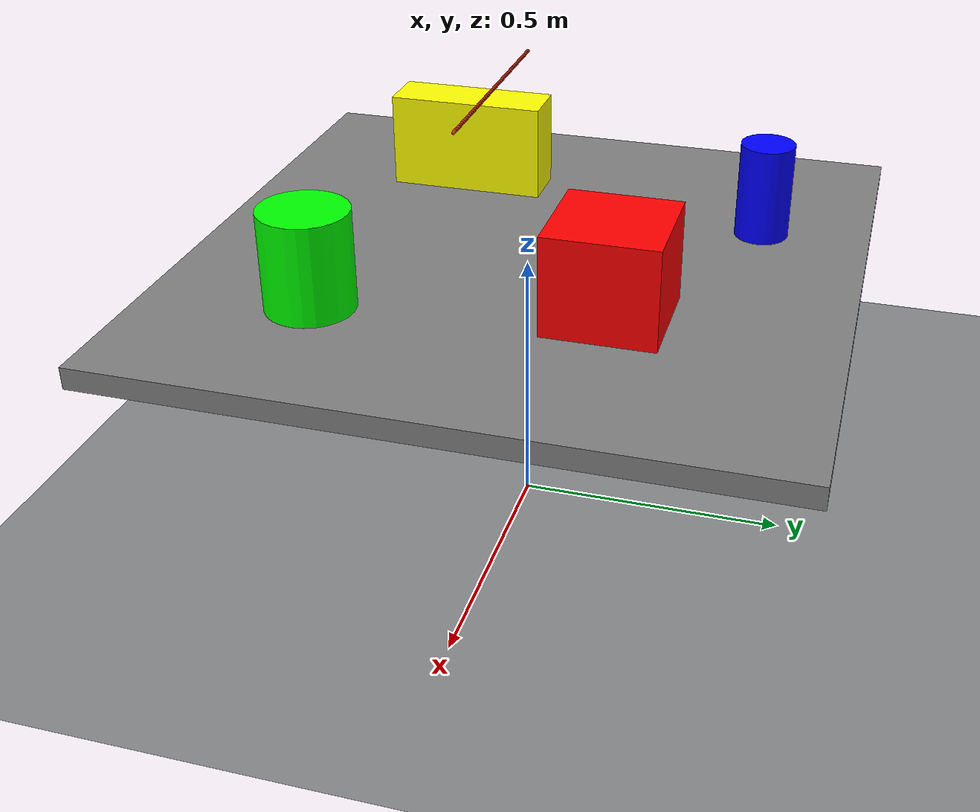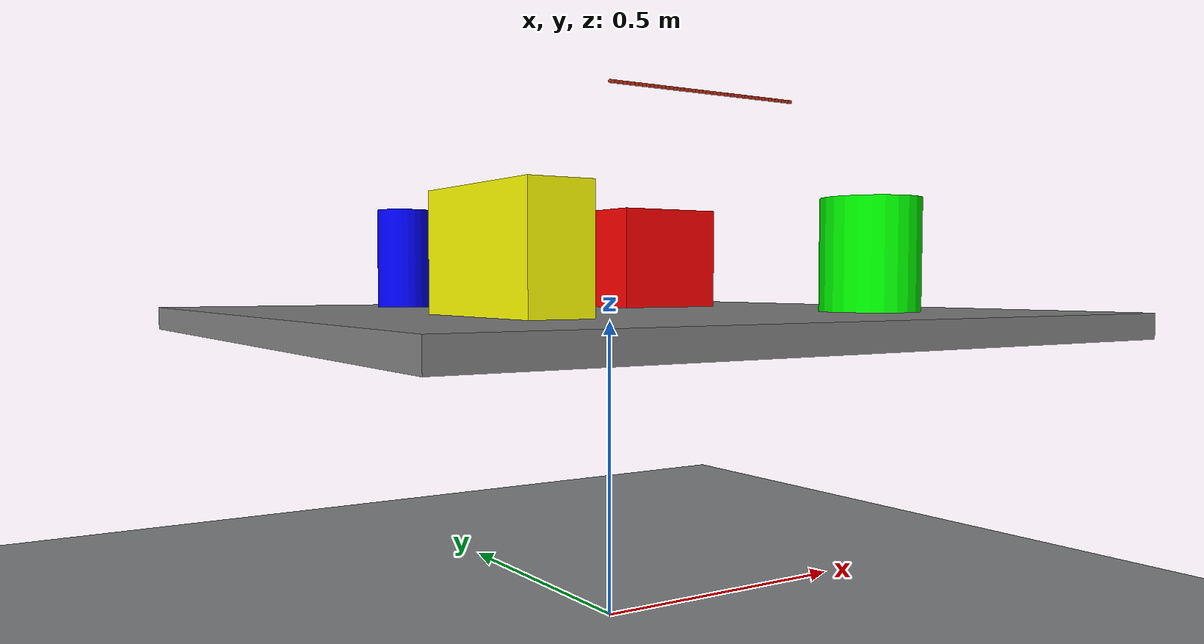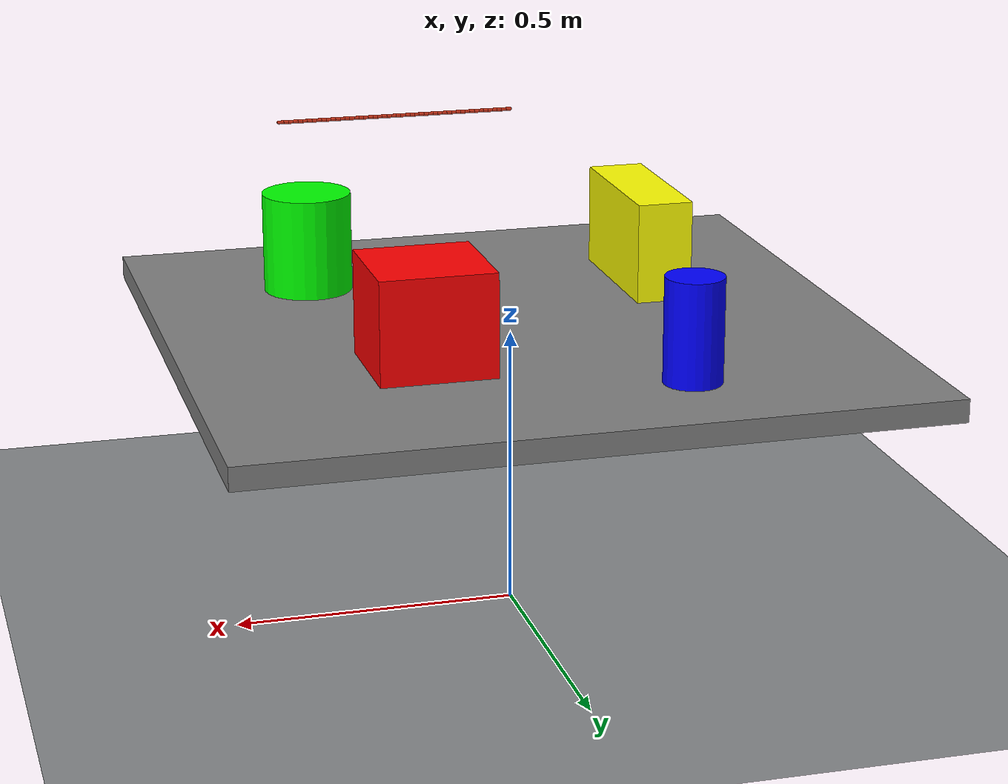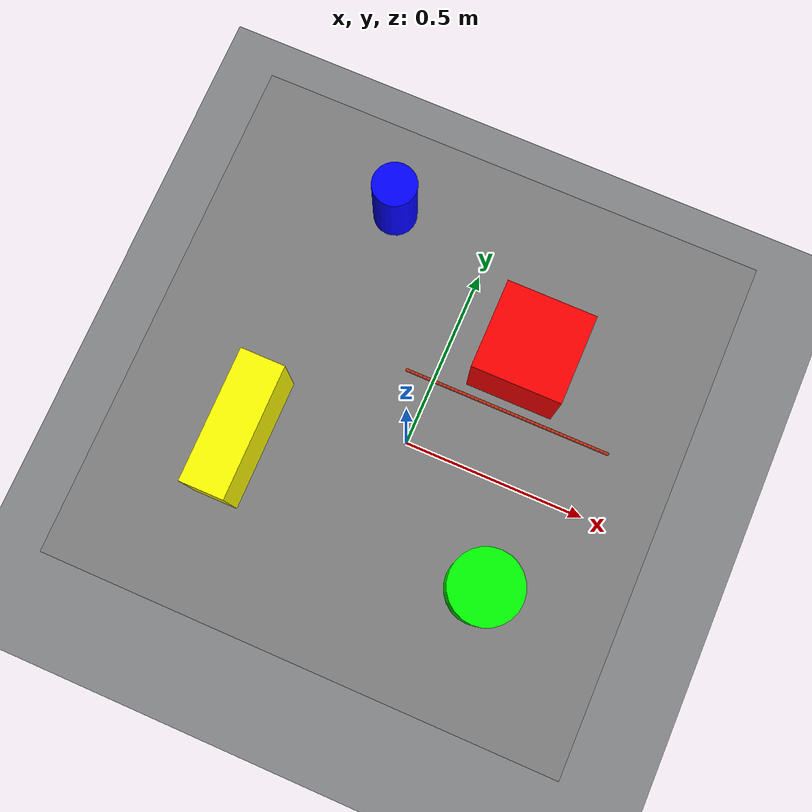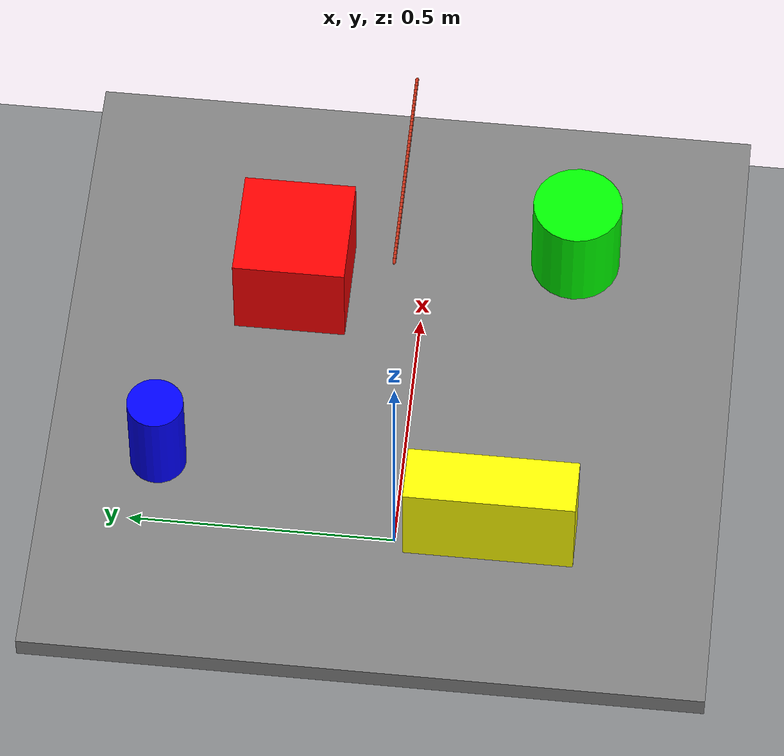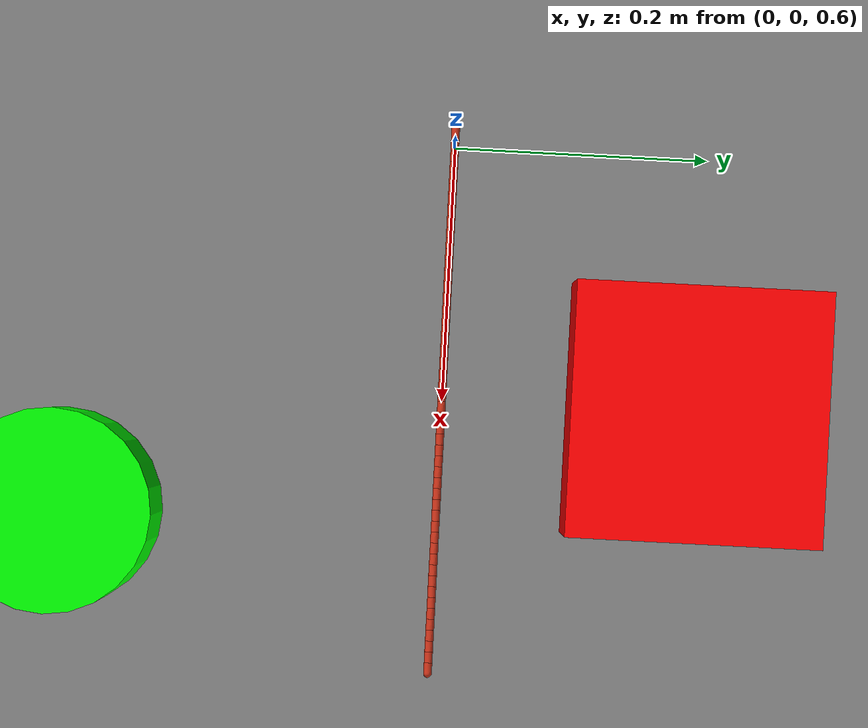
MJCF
<mujoco model="aloha_scene">
  <compiler meshdir="mesh" texturedir="texture"/>
  <include file="2d_case1.xml"/>
  <include file="cable.xml"/>
  <statistic center="0 -0.1 0.2" extent="0.6" meansize="0.05"/>

  <visual>
    <headlight diffuse="0.6 0.6 0.6" ambient="0.3 0.3 0.3" specular="0 0 0"/>
    <rgba haze="0.15 0.25 0.35 1"/>
    <global azimuth="90" elevation="-20"/>
    <quality shadowsize="8192"/>
  </visual>

  <asset>
    <material name="metal" rgba="0.517 0.529 0.537 1"/>
    <material name="wood" rgba="0.8 0.52 0.25 1"/>
    <material name="red" rgba="1 0 0 1"/>
    <material name="blue" rgba="0 0 1 1"/>
    <material name="green" rgba="0 1 0 1"/>
    <material name="yellow" rgba="1 1 0 1"/>
    <material name="white" rgba="1 1 1 1"/>
    <material name="gray" rgba="0.5 0.5 0.5 1"/>
  </asset>

  <default>
    <default class="frame">
      <geom group="1" type="mesh" material="black"/>
    </default>
  </default>

  <worldbody>
    <light pos="0 0.1 2.5"/>
    <geom name="floor" size="2 2 0.05" type="plane" material="metal" pos="0 0 0.05"/>
    <geom name="table" pos="0 0 0.5" size="0.6 0.6 0.02" type="box"/>
    <camera name="overhead_cam" focal="1.93e-3 1.93e-3" resolution="1280 720" sensorsize="3896e-6 2140e-6"
            pos="0 -0.303794 1.02524" mode="fixed" quat="0.976332 0.216277 0 0"/>
    <camera name="worms_eye_cam" focal="1.93e-3 1.93e-3" resolution="1280 720" sensorsize="3896e-6 2140e-6"
            pos="0 -0.377167 0.0316055" mode="fixed" quat="0.672659 0.739953 0 0"/>
  </worldbody>
</mujoco>

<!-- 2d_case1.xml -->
<mujoco model="tabletop_simulation">
    <worldbody>
        <!-- Obstacles -->
        <body name="obstacle1" pos="0.2 0.2 0.6">
            <geom type="box" size="0.1 0.1 0.1" material="red"/>
        </body>

        <body name="obstacle2" pos="-0.2 0.4 0.6">
            <geom type="cylinder" size="0.05 0.1" material="blue"/>
        </body>

        <body name="obstacle3" pos="0.3 -0.3 0.6">
            <geom type="cylinder" size="0.08 0.1" material="green"/>
        </body>

        <body name="obstacle4" pos="-0.3 -0.2 0.6">
            <geom type="box" size="0.05 0.15 0.1" material="yellow"/>
        </body>

    </worldbody>
</mujoco>

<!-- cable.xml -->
<mujoco model="Cable">
  <compiler angle="radian" autolimits="true"/>
  <size memory="8M"/>
  <statistic meansize="0.0147059" extent="0.407" center="0.2 0 0.5965"/>
  <custom>
    <text name="composite_" data="rope_"/>
  </custom>
  <worldbody>
    <body name="cable0" pos="0 0 0.9">
      <joint type="free"/>
      <body name="B_first">
        <geom name="G0" size="0.003 0.004" pos="0.004 0 0" quat="0.707107 0 -0.707107 0" type="capsule" condim="1" rgba="0.8 0.2 0.1 1"/>
        <site name="S_first" pos="0 0 0" group="3"/>
        <body name="B_1" pos="0.008 0 0">
          <joint name="J_1" pos="0 0 0" type="ball" group="3" stiffness="0.03" damping="0.015"/>
          <geom name="G1" size="0.003 0.004" pos="0.004 0 0" quat="0.707107 0 -0.707107 0" type="capsule" condim="1" rgba="0.8 0.2 0.1 1"/>
          <body name="B_2" pos="0.008 0 0">
            <joint name="J_2" pos="0 0 0" type="ball" group="3" stiffness="0.03" damping="0.015"/>
            <geom name="G2" size="0.003 0.004" pos="0.004 0 0" quat="0.707107 0 -0.707107 0" type="capsule" condim="1" rgba="0.8 0.2 0.1 1"/>
            <body name="B_3" pos="0.008 0 0">
              <joint name="J_3" pos="0 0 0" type="ball" group="3" stiffness="0.03" damping="0.015"/>
              <geom name="G3" size="0.003 0.004" pos="0.004 0 0" quat="0.707107 0 -0.707107 0" type="capsule" condim="1" rgba="0.8 0.2 0.1 1"/>
              <body name="B_4" pos="0.008 0 0">
                <joint name="J_4" pos="0 0 0" type="ball" group="3" stiffness="0.03" damping="0.015"/>
                <geom name="G4" size="0.003 0.004" pos="0.004 0 0" quat="0.707107 0 -0.707107 0" type="capsule" condim="1" rgba="0.8 0.2 0.1 1"/>
                <body name="B_5" pos="0.008 0 0">
                  <joint name="J_5" pos="0 0 0" type="ball" group="3" stiffness="0.03" damping="0.015"/>
                  <geom name="G5" size="0.003 0.004" pos="0.004 0 0" quat="0.707107 0 -0.707107 0" type="capsule" condim="1" rgba="0.8 0.2 0.1 1"/>
                  <body name="B_6" pos="0.008 0 0">
                    <joint name="J_6" pos="0 0 0" type="ball" group="3" stiffness="0.03" damping="0.015"/>
                    <geom name="G6" size="0.003 0.004" pos="0.004 0 0" quat="0.707107 0 -0.707107 0" type="capsule" condim="1" rgba="0.8 0.2 0.1 1"/>
                    <body name="B_7" pos="0.008 0 0">
                      <joint name="J_7" pos="0 0 0" type="ball" group="3" stiffness="0.03" damping="0.015"/>
                      <geom name="G7" size="0.003 0.004" pos="0.004 0 0" quat="0.707107 0 -0.707107 0" type="capsule" condim="1" rgba="0.8 0.2 0.1 1"/>
                      <body name="B_8" pos="0.00799999 0 0">
                        <joint name="J_8" pos="0 0 0" type="ball" group="3" stiffness="0.03" damping="0.015"/>
                        <geom name="G8" size="0.003 0.004" pos="0.004 0 0" quat="0.707107 0 -0.707107 0" type="capsule" condim="1" rgba="0.8 0.2 0.1 1"/>
                        <body name="B_9" pos="0.008 0 0">
                          <joint name="J_9" pos="0 0 0" type="ball" group="3" stiffness="0.03" damping="0.015"/>
                          <geom name="G9" size="0.003 0.004" pos="0.004 0 0" quat="0.707107 0 -0.707107 0" type="capsule" condim="1" rgba="0.8 0.2 0.1 1"/>
                          <body name="B_10" pos="0.008 0 0">
                            <joint name="J_10" pos="0 0 0" type="ball" group="3" stiffness="0.03" damping="0.015"/>
                            <geom name="G10" size="0.003 0.004" pos="0.004 0 0" quat="0.707107 0 -0.707107 0" type="capsule" condim="1" rgba="0.8 0.2 0.1 1"/>
                            <body name="B_11" pos="0.008 0 0">
                              <joint name="J_11" pos="0 0 0" type="ball" group="3" stiffness="0.03" damping="0.015"/>
                              <geom name="G11" size="0.003 0.004" pos="0.004 0 0" quat="0.707107 0 -0.707107 0" type="capsule" condim="1" rgba="0.8 0.2 0.1 1"/>
                              <body name="B_12" pos="0.008 0 0">
                                <joint name="J_12" pos="0 0 0" type="ball" group="3" stiffness="0.03" damping="0.015"/>
                                <geom name="G12" size="0.003 0.004" pos="0.004 0 0" quat="0.707107 0 -0.707107 0" type="capsule" condim="1" rgba="0.8 0.2 0.1 1"/>
                                <body name="B_13" pos="0.008 0 0">
                                  <joint name="J_13" pos="0 0 0" type="ball" group="3" stiffness="0.03" damping="0.015"/>
                                  <geom name="G13" size="0.003 0.004" pos="0.004 0 0" quat="0.707107 0 -0.707107 0" type="capsule" condim="1" rgba="0.8 0.2 0.1 1"/>
                                  <body name="B_14" pos="0.00799999 0 0">
                                    <joint name="J_14" pos="0 0 0" type="ball" group="3" stiffness="0.03" damping="0.015"/>
                                    <geom name="G14" size="0.003 0.004" pos="0.004 0 0" quat="0.707107 0 -0.707107 0" type="capsule" condim="1" rgba="0.8 0.2 0.1 1"/>
                                    <body name="B_15" pos="0.00800001 0 0">
                                      <joint name="J_15" pos="0 0 0" type="ball" group="3" stiffness="0.03" damping="0.015"/>
                                      <geom name="G15" size="0.003 0.004" pos="0.004 0 0" quat="0.707107 0 -0.707107 0" type="capsule" condim="1" rgba="0.8 0.2 0.1 1"/>
                                      <body name="B_16" pos="0.008 0 0">
                                        <joint name="J_16" pos="0 0 0" type="ball" group="3" stiffness="0.03" damping="0.015"/>
                                        <geom name="G16" size="0.003 0.004" pos="0.004 0 0" quat="0.707107 0 -0.707107 0" type="capsule" condim="1" rgba="0.8 0.2 0.1 1"/>
                                        <body name="B_17" pos="0.00799999 0 0">
                                          <joint name="J_17" pos="0 0 0" type="ball" group="3" stiffness="0.03" damping="0.015"/>
                                          <geom name="G17" size="0.003 0.00399999" pos="0.00399999 0 0" quat="0.707107 0 -0.707107 0" type="capsule" condim="1" rgba="0.8 0.2 0.1 1"/>
                                          <body name="B_18" pos="0.008 0 0">
                                            <joint name="J_18" pos="0 0 0" type="ball" group="3" stiffness="0.03" damping="0.015"/>
                                            <geom name="G18" size="0.003 0.004" pos="0.004 0 0" quat="0.707107 0 -0.707107 0" type="capsule" condim="1" rgba="0.8 0.2 0.1 1"/>
                                            <body name="B_19" pos="0.008 0 0">
                                              <joint name="J_19" pos="0 0 0" type="ball" group="3" stiffness="0.03" damping="0.015"/>
                                              <geom name="G19" size="0.003 0.004" pos="0.004 0 0" quat="0.707107 0 -0.707107 0" type="capsule" condim="1" rgba="0.8 0.2 0.1 1"/>
                                              <body name="B_20" pos="0.008 0 0">
                                                <joint name="J_20" pos="0 0 0" type="ball" group="3" stiffness="0.03" damping="0.015"/>
                                                <geom name="G20" size="0.003 0.004" pos="0.004 0 0" quat="0.707107 0 -0.707107 0" type="capsule" condim="1" rgba="0.8 0.2 0.1 1"/>
                                                <body name="B_21" pos="0.008 0 0">
                                                  <joint name="J_21" pos="0 0 0" type="ball" group="3" stiffness="0.03" damping="0.015"/>
                                                  <geom name="G21" size="0.003 0.004" pos="0.004 0 0" quat="0.707107 0 -0.707107 0" type="capsule" condim="1" rgba="0.8 0.2 0.1 1"/>
                                                  <body name="B_22" pos="0.008 0 0">
                                                    <joint name="J_22" pos="0 0 0" type="ball" group="3" stiffness="0.03" damping="0.015"/>
                                                    <geom name="G22" size="0.003 0.004" pos="0.004 0 0" quat="0.707107 0 -0.707107 0" type="capsule" condim="1" rgba="0.8 0.2 0.1 1"/>
                                                    <body name="B_23" pos="0.008 0 0">
                                                      <joint name="J_23" pos="0 0 0" type="ball" group="3" stiffness="0.03" damping="0.015"/>
                                                      <geom name="G23" size="0.003 0.004" pos="0.004 0 0" quat="0.707107 0 -0.707107 0" type="capsule" condim="1" rgba="0.8 0.2 0.1 1"/>
                                                      <body name="B_24" pos="0.008 0 0">
                                                        <joint name="J_24" pos="0 0 0" type="ball" group="3" stiffness="0.03" damping="0.015"/>
                                                        <geom name="G24" size="0.003 0.004" pos="0.004 0 0" quat="0.707107 0 -0.707107 0" type="capsule" condim="1" rgba="0.8 0.2 0.1 1"/>
                                                        <body name="B_25" pos="0.008 0 0">
                                                          <joint name="J_25" pos="0 0 0" type="ball" group="3" stiffness="0.03" damping="0.015"/>
                                                          <geom name="G25" size="0.003 0.004" pos="0.004 0 0" quat="0.707107 0 -0.707107 0" type="capsule" condim="1" rgba="0.8 0.2 0.1 1"/>
                                                          <body name="B_26" pos="0.008 0 0">
                                                            <joint name="J_26" pos="0 0 0" type="ball" group="3" stiffness="0.03" damping="0.015"/>
                                                            <geom name="G26" size="0.003 0.004" pos="0.004 0 0" quat="0.707107 0 -0.707107 0" type="capsule" condim="1" rgba="0.8 0.2 0.1 1"/>
                                                            <body name="B_27" pos="0.008 0 0">
                                                              <joint name="J_27" pos="0 0 0" type="ball" group="3" stiffness="0.03" damping="0.015"/>
                                                              <geom name="G27" size="0.003 0.004" pos="0.004 0 0" quat="0.707107 0 -0.707107 0" type="capsule" condim="1" rgba="0.8 0.2 0.1 1"/>
                                                              <body name="B_28" pos="0.00799999 0 0">
                                                                <joint name="J_28" pos="0 0 0" type="ball" group="3" stiffness="0.03" damping="0.015"/>
                                                                <geom name="G28" size="0.003 0.00399999" pos="0.00399999 0 0" quat="0.707107 0 -0.707107 0" type="capsule" condim="1" rgba="0.8 0.2 0.1 1"/>
                                                                <body name="B_29" pos="0.008 0 0">
                                                                  <joint name="J_29" pos="0 0 0" type="ball" group="3" stiffness="0.03" damping="0.015"/>
                                                                  <geom name="G29" size="0.003 0.004" pos="0.004 0 0" quat="0.707107 0 -0.707107 0" type="capsule" condim="1" rgba="0.8 0.2 0.1 1"/>
                                                                  <body name="B_30" pos="0.008 0 0">
                                                                    <joint name="J_30" pos="0 0 0" type="ball" group="3" stiffness="0.03" damping="0.015"/>
                                                                    <geom name="G30" size="0.003 0.004" pos="0.004 0 0" quat="0.707107 0 -0.707107 0" type="capsule" condim="1" rgba="0.8 0.2 0.1 1"/>
                                                                    <body name="B_31" pos="0.00800002 0 0">
                                                                      <joint name="J_31" pos="0 0 0" type="ball" group="3" stiffness="0.03" damping="0.015"/>
                                                                      <geom name="G31" size="0.003 0.00400001" pos="0.00400001 0 0" quat="0.707107 0 -0.707107 0" type="capsule" condim="1" rgba="0.8 0.2 0.1 1"/>
                                                                      <body name="B_32" pos="0.00799999 0 0">
                                                                        <joint name="J_32" pos="0 0 0" type="ball" group="3" stiffness="0.03" damping="0.015"/>
                                                                        <geom name="G32" size="0.003 0.00399999" pos="0.00399999 0 0" quat="0.707107 0 -0.707107 0" type="capsule" condim="1" rgba="0.8 0.2 0.1 1"/>
                                                                        <body name="B_33" pos="0.00800002 0 0">
                                                                          <joint name="J_33" pos="0 0 0" type="ball" group="3" stiffness="0.03" damping="0.015"/>
                                                                          <geom name="G33" size="0.003 0.00400001" pos="0.00400001 0 0" quat="0.707107 0 -0.707107 0" type="capsule" condim="1" rgba="0.8 0.2 0.1 1"/>
                                                                          <body name="B_34" pos="0.00799999 0 0">
                                                                            <joint name="J_34" pos="0 0 0" type="ball" group="3" stiffness="0.03" damping="0.015"/>
                                                                            <geom name="G34" size="0.003 0.00399999" pos="0.00399999 0 0" quat="0.707107 0 -0.707107 0" type="capsule" condim="1" rgba="0.8 0.2 0.1 1"/>
                                                                            <body name="B_35" pos="0.00799999 0 0">
                                                                              <joint name="J_35" pos="0 0 0" type="ball" group="3" stiffness="0.03" damping="0.015"/>
                                                                              <geom name="G35" size="0.003 0.00399999" pos="0.00399999 0 0" quat="0.707107 0 -0.707107 0" type="capsule" condim="1" rgba="0.8 0.2 0.1 1"/>
                                                                              <body name="B_36" pos="0.00800002 0 0">
                                                                                <joint name="J_36" pos="0 0 0" type="ball" group="3" stiffness="0.03" damping="0.015"/>
                                                                                <geom name="G36" size="0.003 0.00400001" pos="0.00400001 0 0" quat="0.707107 0 -0.707107 0" type="capsule" condim="1" rgba="0.8 0.2 0.1 1"/>
                                                                                <body name="B_37" pos="0.00799999 0 0">
                                                                                  <joint name="J_37" pos="0 0 0" type="ball" group="3" stiffness="0.03" damping="0.015"/>
                                                                                  <geom name="G37" size="0.003 0.00399999" pos="0.00399999 0 0" quat="0.707107 0 -0.707107 0" type="capsule" condim="1" rgba="0.8 0.2 0.1 1"/>
                                                                                  <body name="B_38" pos="0.00800002 0 0">
                                                                                    <joint name="J_38" pos="0 0 0" type="ball" group="3" stiffness="0.03" damping="0.015"/>
                                                                                    <geom name="G38" size="0.003 0.00400001" pos="0.00400001 0 0" quat="0.707107 0 -0.707107 0" type="capsule" condim="1" rgba="0.8 0.2 0.1 1"/>
                                                                                    <body name="B_39" pos="0.00799999 0 0">
                                                                                      <joint name="J_39" pos="0 0 0" type="ball" group="3" stiffness="0.03" damping="0.015"/>
                                                                                      <geom name="G39" size="0.003 0.00399999" pos="0.00399999 0 0" quat="0.707107 0 -0.707107 0" type="capsule" condim="1" rgba="0.8 0.2 0.1 1"/>
                                                                                      <body name="B_40" pos="0.00800002 0 0">
                                                                                        <joint name="J_40" pos="0 0 0" type="ball" group="3" stiffness="0.03" damping="0.015"/>
                                                                                        <geom name="G40" size="0.003 0.00400001" pos="0.00400001 0 0" quat="0.707107 0 -0.707107 0" type="capsule" condim="1" rgba="0.8 0.2 0.1 1"/>
                                                                                        <body name="B_41" pos="0.00799999 0 0">
                                                                                          <joint name="J_41" pos="0 0 0" type="ball" group="3" stiffness="0.03" damping="0.015"/>
                                                                                          <geom name="G41" size="0.003 0.00399999" pos="0.00399999 0 0" quat="0.707107 0 -0.707107 0" type="capsule" condim="1" rgba="0.8 0.2 0.1 1"/>
                                                                                          <body name="B_42" pos="0.00800002 0 0">
                                                                                            <joint name="J_42" pos="0 0 0" type="ball" group="3" stiffness="0.03" damping="0.015"/>
                                                                                            <geom name="G42" size="0.003 0.00400001" pos="0.00400001 0 0" quat="0.707107 0 -0.707107 0" type="capsule" condim="1" rgba="0.8 0.2 0.1 1"/>
                                                                                            <body name="B_43" pos="0.00799999 0 0">
                                                                                              <joint name="J_43" pos="0 0 0" type="ball" group="3" stiffness="0.03" damping="0.015"/>
                                                                                              <geom name="G43" size="0.003 0.00399999" pos="0.00399999 0 0" quat="0.707107 0 -0.707107 0" type="capsule" condim="1" rgba="0.8 0.2 0.1 1"/>
                                                                                              <body name="B_44" pos="0.00800002 0 0">
                                                                                                <joint name="J_44" pos="0 0 0" type="ball" group="3" stiffness="0.03" damping="0.015"/>
                                                                                                <geom name="G44" size="0.003 0.00400001" pos="0.00400001 0 0" quat="0.707107 0 -0.707107 0" type="capsule" condim="1" rgba="0.8 0.2 0.1 1"/>
                                                                                                <body name="B_45" pos="0.00799999 0 0">
                                                                                                  <joint name="J_45" pos="0 0 0" type="ball" group="3" stiffness="0.03" damping="0.015"/>
                                                                                                  <geom name="G45" size="0.003 0.00399999" pos="0.00399999 0 0" quat="0.707107 0 -0.707107 0" type="capsule" condim="1" rgba="0.8 0.2 0.1 1"/>
                                                                                                  <body name="B_46" pos="0.00799999 0 0">
                                                                                                    <joint name="J_46" pos="0 0 0" type="ball" group="3" stiffness="0.03" damping="0.015"/>
                                                                                                    <geom name="G46" size="0.003 0.00399999" pos="0.00399999 0 0" quat="0.707107 0 -0.707107 0" type="capsule" condim="1" rgba="0.8 0.2 0.1 1"/>
                                                                                                    <body name="B_47" pos="0.00800002 0 0">
                                                                                                      <joint name="J_47" pos="0 0 0" type="ball" group="3" stiffness="0.03" damping="0.015"/>
                                                                                                      <geom name="G47" size="0.003 0.00400001" pos="0.00400001 0 0" quat="0.707107 0 -0.707107 0" type="capsule" condim="1" rgba="0.8 0.2 0.1 1"/>
                                                                                                      <body name="B_48" pos="0.00799999 0 0">
                                                                                                        <joint name="J_48" pos="0 0 0" type="ball" group="3" stiffness="0.03" damping="0.015"/>
                                                                                                        <geom name="G48" size="0.003 0.00399999" pos="0.00399999 0 0" quat="0.707107 0 -0.707107 0" type="capsule" condim="1" rgba="0.8 0.2 0.1 1"/>
                                                                                                        <body name="B_last" pos="0.00800002 0 0">
                                                                                                          <joint name="J_last" pos="0 0 0" type="ball" group="3" stiffness="0.03" damping="0.015"/>
                                                                                                          <geom name="G49" size="0.003 0.00400001" pos="0.00400001 0 0" quat="0.707107 0 -0.707107 0" type="capsule" condim="1" rgba="0.8 0.2 0.1 1"/>
                                                                                                          <site name="S_last" pos="0.00800002 0 0" group="3"/>
                                                                                                        </body>
                                                                                                      </body>
                                                                                                    </body>
                                                                                                  </body>
                                                                                                </body>
                                                                                              </body>
                                                                                            </body>
                                                                                          </body>
                                                                                        </body>
                                                                                      </body>
                                                                                    </body>
                                                                                  </body>
                                                                                </body>
                                                                              </body>
                                                                            </body>
                                                                          </body>
                                                                        </body>
                                                                      </body>
                                                                    </body>
                                                                  </body>
                                                                </body>
                                                              </body>
                                                            </body>
                                                          </body>
                                                        </body>
                                                      </body>
                                                    </body>
                                                  </body>
                                                </body>
                                              </body>
                                            </body>
                                          </body>
                                        </body>
                                      </body>
                                    </body>
                                  </body>
                                </body>
                              </body>
                            </body>
                          </body>
                        </body>
                      </body>
                    </body>
                  </body>
                </body>
              </body>
            </body>
          </body>
        </body>
      </body>
    </body>
  </worldbody>
  <contact>
    <exclude body1="B_first" body2="B_1"/>
    <exclude body1="B_1" body2="B_2"/>
    <exclude body1="B_2" body2="B_3"/>
    <exclude body1="B_3" body2="B_4"/>
    <exclude body1="B_4" body2="B_5"/>
    <exclude body1="B_5" body2="B_6"/>
    <exclude body1="B_6" body2="B_7"/>
    <exclude body1="B_7" body2="B_8"/>
    <exclude body1="B_8" body2="B_9"/>
    <exclude body1="B_9" body2="B_10"/>
    <exclude body1="B_10" body2="B_11"/>
    <exclude body1="B_11" body2="B_12"/>
    <exclude body1="B_12" body2="B_13"/>
    <exclude body1="B_13" body2="B_14"/>
    <exclude body1="B_14" body2="B_15"/>
    <exclude body1="B_15" body2="B_16"/>
    <exclude body1="B_16" body2="B_17"/>
    <exclude body1="B_17" body2="B_18"/>
    <exclude body1="B_18" body2="B_19"/>
    <exclude body1="B_19" body2="B_20"/>
    <exclude body1="B_20" body2="B_21"/>
    <exclude body1="B_21" body2="B_22"/>
    <exclude body1="B_22" body2="B_23"/>
    <exclude body1="B_23" body2="B_24"/>
    <exclude body1="B_24" body2="B_25"/>
    <exclude body1="B_25" body2="B_26"/>
    <exclude body1="B_26" body2="B_27"/>
    <exclude body1="B_27" body2="B_28"/>
    <exclude body1="B_28" body2="B_29"/>
    <exclude body1="B_29" body2="B_30"/>
    <exclude body1="B_30" body2="B_31"/>
    <exclude body1="B_31" body2="B_32"/>
    <exclude body1="B_32" body2="B_33"/>
    <exclude body1="B_33" body2="B_34"/>
    <exclude body1="B_34" body2="B_35"/>
    <exclude body1="B_35" body2="B_36"/>
    <exclude body1="B_36" body2="B_37"/>
    <exclude body1="B_37" body2="B_38"/>
    <exclude body1="B_38" body2="B_39"/>
    <exclude body1="B_39" body2="B_40"/>
    <exclude body1="B_40" body2="B_41"/>
    <exclude body1="B_41" body2="B_42"/>
    <exclude body1="B_42" body2="B_43"/>
    <exclude body1="B_43" body2="B_44"/>
    <exclude body1="B_44" body2="B_45"/>
    <exclude body1="B_45" body2="B_46"/>
    <exclude body1="B_46" body2="B_47"/>
    <exclude body1="B_47" body2="B_48"/>
    <exclude body1="B_48" body2="B_last"/>
  </contact>
</mujoco>
